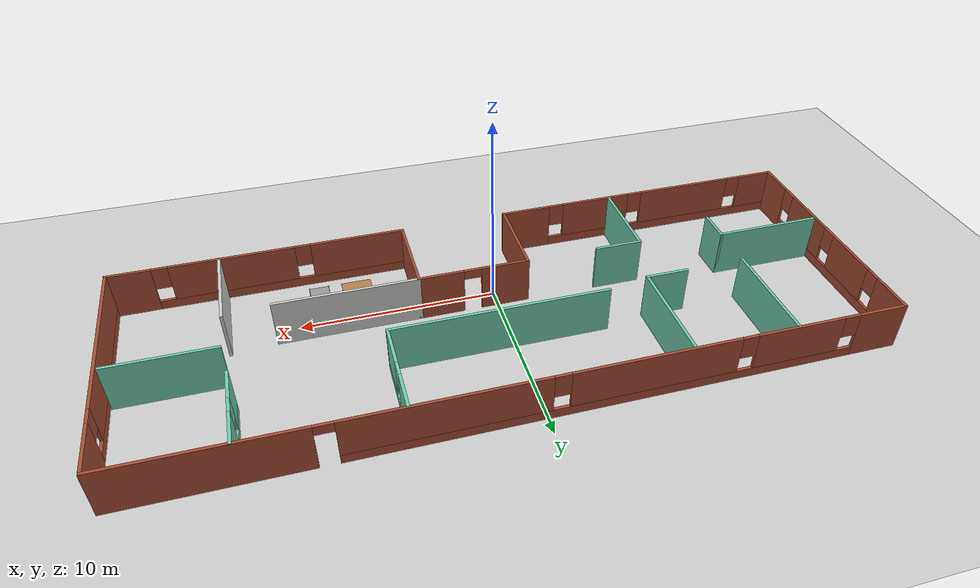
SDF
<sdf version="1.6">
 <world name="default">
  <model name="ground_plane">
   <static>1</static>
   <link name="link">
    <collision name="collision">
     <geometry><plane><normal>0 0 1</normal><size>100 100</size></plane></geometry>
     <surface><friction><ode><mu>100</mu><mu2>50</mu2></ode></friction></surface>
    </collision>
    <visual name="visual">
     <cast_shadows>0</cast_shadows>
     <geometry><plane><normal>0 0 1</normal><size>100 100</size></plane></geometry>
     <material>
      <script><uri>file://media/materials/scripts/gazebo.material</uri><name>Gazebo/Grey</name></script>
     </material>
    </visual>
   </link>
  </model>
  <model name="office">
   <pose>0.5777 2.7439 0 0 -0 0</pose>
   <link name="Wall_27">
    <pose>18.275 0.006607 0 0 0 -1.5708</pose>
    <visual name="Wall_27_Visual_0">
     <pose>-4.99868 0 1.25 0 -0 0</pose>
     <geometry><box><size>2.75264 0.15 2.5</size></box></geometry>
     <material>
      <script><uri>file://media/materials/scripts/gazebo.material</uri><name>Gazebo/Bricks</name></script>
      <ambient>1 1 1 1</ambient>
     </material>
     <meta><layer>0</layer></meta>
    </visual>
    <collision name="Wall_27_Collision_0">
     <geometry><box><size>2.75264 0.15 2.5</size></box></geometry>
     <pose>-4.99868 0 1.25 0 -0 0</pose>
    </collision>
    <visual name="Wall_27_Visual_1">
     <pose>1.37632 0 0.25 0 -0 0</pose>
     <geometry><box><size>9.99736 0.15 0.5</size></box></geometry>
     <material>
      <script><uri>file://media/materials/scripts/gazebo.material</uri><name>Gazebo/Bricks</name></script>
      <ambient>1 1 1 1</ambient>
     </material>
     <meta><layer>0</layer></meta>
    </visual>
    <collision name="Wall_27_Collision_1">
     <geometry><box><size>9.99736 0.15 0.5</size></box></geometry>
     <pose>1.37632 0 0.25 0 -0 0</pose>
    </collision>
    <visual name="Wall_27_Visual_2">
     <pose>1.77632 0 1.5 0 -0 0</pose>
     <geometry><box><size>9.19736 0.15 2</size></box></geometry>
     <material>
      <script><uri>file://media/materials/scripts/gazebo.material</uri><name>Gazebo/Bricks</name></script>
      <ambient>1 1 1 1</ambient>
     </material>
     <meta><layer>0</layer></meta>
    </visual>
    <collision name="Wall_27_Collision_2">
     <geometry><box><size>9.19736 0.15 2</size></box></geometry>
     <pose>1.77632 0 1.5 0 -0 0</pose>
    </collision>
    <visual name="Wall_27_Visual_3">
     <pose>-3.22236 0 1.9 0 -0 0</pose>
     <geometry><box><size>0.8 0.15 1.2</size></box></geometry>
     <material>
      <script><uri>file://media/materials/scripts/gazebo.material</uri><name>Gazebo/Bricks</name></script>
      <ambient>1 1 1 1</ambient>
     </material>
     <meta><layer>0</layer></meta>
    </visual>
    <collision name="Wall_27_Collision_3">
     <geometry><box><size>0.8 0.15 1.2</size></box></geometry>
     <pose>-3.22236 0 1.9 0 -0 0</pose>
    </collision>
   </link>
   <link name="Wall_28">
    <pose>10.85 -6.29339 0 0 -0 3.14159</pose>
    <visual name="Wall_28_Visual_0">
     <pose>-6.39219 0 1.25 0 -0 0</pose>
     <geometry><box><size>2.21562 0.15 2.5</size></box></geometry>
     <material>
      <script><uri>file://media/materials/scripts/gazebo.material</uri><name>Gazebo/Bricks</name></script>
      <ambient>1 1 1 1</ambient>
     </material>
     <meta><layer>0</layer></meta>
    </visual>
    <collision name="Wall_28_Collision_0">
     <geometry><box><size>2.21562 0.15 2.5</size></box></geometry>
     <pose>-6.39219 0 1.25 0 -0 0</pose>
    </collision>
    <visual name="Wall_28_Visual_1">
     <pose>1.10781 0 0.25 0 -0 0</pose>
     <geometry><box><size>12.7844 0.15 0.5</size></box></geometry>
     <material>
      <script><uri>file://media/materials/scripts/gazebo.material</uri><name>Gazebo/Bricks</name></script>
      <ambient>1 1 1 1</ambient>
     </material>
     <meta><layer>0</layer></meta>
    </visual>
    <collision name="Wall_28_Collision_1">
     <geometry><box><size>12.7844 0.15 0.5</size></box></geometry>
     <pose>1.10781 0 0.25 0 -0 0</pose>
    </collision>
    <visual name="Wall_28_Visual_2">
     <pose>-1.34653 0 1.5 0 -0 0</pose>
     <geometry><box><size>6.27571 0.15 2</size></box></geometry>
     <material>
      <script><uri>file://media/materials/scripts/gazebo.material</uri><name>Gazebo/Bricks</name></script>
      <ambient>1 1 1 1</ambient>
     </material>
     <meta><layer>0</layer></meta>
    </visual>
    <collision name="Wall_28_Collision_2">
     <geometry><box><size>6.27571 0.15 2</size></box></geometry>
     <pose>-1.34653 0 1.5 0 -0 0</pose>
    </collision>
    <visual name="Wall_28_Visual_3">
     <pose>5.04566 0 1.5 0 -0 0</pose>
     <geometry><box><size>4.90868 0.15 2</size></box></geometry>
     <material>
      <script><uri>file://media/materials/scripts/gazebo.material</uri><name>Gazebo/Bricks</name></script>
      <ambient>1 1 1 1</ambient>
     </material>
     <meta><layer>0</layer></meta>
    </visual>
    <collision name="Wall_28_Collision_3">
     <geometry><box><size>4.90868 0.15 2</size></box></geometry>
     <pose>5.04566 0 1.5 0 -0 0</pose>
    </collision>
    <visual name="Wall_28_Visual_4">
     <pose>-4.88438 0 1.9 0 -0 0</pose>
     <geometry><box><size>0.8 0.15 1.2</size></box></geometry>
     <material>
      <script><uri>file://media/materials/scripts/gazebo.material</uri><name>Gazebo/Bricks</name></script>
      <ambient>1 1 1 1</ambient>
     </material>
     <meta><layer>0</layer></meta>
    </visual>
    <collision name="Wall_28_Collision_4">
     <geometry><box><size>0.8 0.15 1.2</size></box></geometry>
     <pose>-4.88438 0 1.9 0 -0 0</pose>
    </collision>
    <visual name="Wall_28_Visual_5">
     <pose>2.19132 0 1.9 0 -0 0</pose>
     <geometry><box><size>0.8 0.15 1.2</size></box></geometry>
     <material>
      <script><uri>file://media/materials/scripts/gazebo.material</uri><name>Gazebo/Bricks</name></script>
      <ambient>1 1 1 1</ambient>
     </material>
     <meta><layer>0</layer></meta>
    </visual>
    <collision name="Wall_28_Collision_5">
     <geometry><box><size>0.8 0.15 1.2</size></box></geometry>
     <pose>2.19132 0 1.9 0 -0 0</pose>
    </collision>
   </link>
   <link name="Wall_29">
    <collision name="Wall_29_Collision">
     <geometry><box><size>4.5 0.15 2.5</size></box></geometry>
     <pose>0 0 1.25 0 -0 0</pose>
    </collision>
    <visual name="Wall_29_Visual">
     <pose>0 0 1.25 0 -0 0</pose>
     <geometry><box><size>4.5 0.15 2.5</size></box></geometry>
     <material>
      <script><uri>file://media/materials/scripts/gazebo.material</uri><name>Gazebo/Bricks</name></script>
      <ambient>1 1 1 1</ambient>
     </material>
     <meta><layer>0</layer></meta>
    </visual>
    <pose>3.425 -4.11839 0 0 -0 1.5708</pose>
   </link>
   <link name="Wall_30">
    <pose>0.625 -1.94339 0 0 -0 3.14159</pose>
    <visual name="Wall_30_Visual_0">
     <pose>-1.6967 0 1.25 0 -0 0</pose>
     <geometry><box><size>2.3566 0.15 2.5</size></box></geometry>
     <material>
      <script><uri>file://media/materials/scripts/gazebo.material</uri><name>Gazebo/Bricks</name></script>
      <ambient>1 1 1 1</ambient>
     </material>
     <meta><layer>0</layer></meta>
    </visual>
    <collision name="Wall_30_Collision_0">
     <geometry><box><size>2.3566 0.15 2.5</size></box></geometry>
     <pose>-1.6967 0 1.25 0 -0 0</pose>
    </collision>
    <visual name="Wall_30_Visual_1">
     <pose>1.6283 0 1.25 0 -0 0</pose>
     <geometry><box><size>2.4934 0.15 2.5</size></box></geometry>
     <material>
      <script><uri>file://media/materials/scripts/gazebo.material</uri><name>Gazebo/Bricks</name></script>
      <ambient>1 1 1 1</ambient>
     </material>
     <meta><layer>0</layer></meta>
    </visual>
    <collision name="Wall_30_Collision_1">
     <geometry><box><size>2.4934 0.15 2.5</size></box></geometry>
     <pose>1.6283 0 1.25 0 -0 0</pose>
    </collision>
    <visual name="Wall_30_Visual_2">
     <pose>-0.068397 0 2.25 0 -0 0</pose>
     <geometry><box><size>0.9 0.15 0.5</size></box></geometry>
     <material>
      <script><uri>file://media/materials/scripts/gazebo.material</uri><name>Gazebo/Bricks</name></script>
      <ambient>1 1 1 1</ambient>
     </material>
     <meta><layer>0</layer></meta>
    </visual>
    <collision name="Wall_30_Collision_2">
     <geometry><box><size>0.9 0.15 0.5</size></box></geometry>
     <pose>-0.068397 0 2.25 0 -0 0</pose>
    </collision>
   </link>
   <link name="Wall_31">
    <collision name="Wall_31_Collision">
     <geometry><box><size>4.5 0.15 2.5</size></box></geometry>
     <pose>0 0 1.25 0 -0 0</pose>
    </collision>
    <visual name="Wall_31_Visual">
     <pose>0 0 1.25 0 -0 0</pose>
     <geometry><box><size>4.5 0.15 2.5</size></box></geometry>
     <material>
      <script><uri>file://media/materials/scripts/gazebo.material</uri><name>Gazebo/Bricks</name></script>
      <ambient>1 1 1 1</ambient>
     </material>
     <meta><layer>0</layer></meta>
    </visual>
    <pose>-2.175 -4.11839 0 0 0 -1.5708</pose>
   </link>
   <link name="Wall_32">
    <pose>-10.225 -6.29339 0 0 -0 3.14159</pose>
    <visual name="Wall_32_Visual_0">
     <pose>-6.78571 0 1.25 0 -0 0</pose>
     <geometry><box><size>2.67859 0.15 2.5</size></box></geometry>
     <material>
      <script><uri>file://media/materials/scripts/gazebo.material</uri><name>Gazebo/Bricks</name></script>
      <ambient>1 1 1 1</ambient>
     </material>
     <meta><layer>0</layer></meta>
    </visual>
    <collision name="Wall_32_Collision_0">
     <geometry><box><size>2.67859 0.15 2.5</size></box></geometry>
     <pose>-6.78571 0 1.25 0 -0 0</pose>
    </collision>
    <visual name="Wall_32_Visual_1">
     <pose>1.33929 0 0.25 0 -0 0</pose>
     <geometry><box><size>13.5714 0.15 0.5</size></box></geometry>
     <material>
      <script><uri>file://media/materials/scripts/gazebo.material</uri><name>Gazebo/Bricks</name></script>
      <ambient>1 1 1 1</ambient>
     </material>
     <meta><layer>0</layer></meta>
    </visual>
    <collision name="Wall_32_Collision_1">
     <geometry><box><size>13.5714 0.15 0.5</size></box></geometry>
     <pose>1.33929 0 0.25 0 -0 0</pose>
    </collision>
    <visual name="Wall_32_Visual_2">
     <pose>-2.72912 0 1.5 0 -0 0</pose>
     <geometry><box><size>3.83459 0.15 2</size></box></geometry>
     <material>
      <script><uri>file://media/materials/scripts/gazebo.material</uri><name>Gazebo/Bricks</name></script>
      <ambient>1 1 1 1</ambient>
     </material>
     <meta><layer>0</layer></meta>
    </visual>
    <collision name="Wall_32_Collision_2">
     <geometry><box><size>3.83459 0.15 2</size></box></geometry>
     <pose>-2.72912 0 1.5 0 -0 0</pose>
    </collision>
    <visual name="Wall_32_Visual_3">
     <pose>2.64842 0 1.5 0 -0 0</pose>
     <geometry><box><size>5.32049 0.15 2</size></box></geometry>
     <material>
      <script><uri>file://media/materials/scripts/gazebo.material</uri><name>Gazebo/Bricks</name></script>
      <ambient>1 1 1 1</ambient>
     </material>
     <meta><layer>0</layer></meta>
    </visual>
    <collision name="Wall_32_Collision_3">
     <geometry><box><size>5.32049 0.15 2</size></box></geometry>
     <pose>2.64842 0 1.5 0 -0 0</pose>
    </collision>
    <visual name="Wall_32_Visual_4">
     <pose>7.11683 0 1.5 0 -0 0</pose>
     <geometry><box><size>2.01634 0.15 2</size></box></geometry>
     <material>
      <script><uri>file://media/materials/scripts/gazebo.material</uri><name>Gazebo/Bricks</name></script>
      <ambient>1 1 1 1</ambient>
     </material>
     <meta><layer>0</layer></meta>
    </visual>
    <collision name="Wall_32_Collision_4">
     <geometry><box><size>2.01634 0.15 2</size></box></geometry>
     <pose>7.11683 0 1.5 0 -0 0</pose>
    </collision>
    <visual name="Wall_32_Visual_5">
     <pose>-5.04641 0 1.9 0 -0 0</pose>
     <geometry><box><size>0.8 0.15 1.2</size></box></geometry>
     <material>
      <script><uri>file://media/materials/scripts/gazebo.material</uri><name>Gazebo/Bricks</name></script>
      <ambient>1 1 1 1</ambient>
     </material>
     <meta><layer>0</layer></meta>
    </visual>
    <collision name="Wall_32_Collision_5">
     <geometry><box><size>0.8 0.15 1.2</size></box></geometry>
     <pose>-5.04641 0 1.9 0 -0 0</pose>
    </collision>
    <visual name="Wall_32_Visual_6">
     <pose>-0.411825 0 1.9 0 -0 0</pose>
     <geometry><box><size>0.8 0.15 1.2</size></box></geometry>
     <material>
      <script><uri>file://media/materials/scripts/gazebo.material</uri><name>Gazebo/Bricks</name></script>
      <ambient>1 1 1 1</ambient>
     </material>
     <meta><layer>0</layer></meta>
    </visual>
    <collision name="Wall_32_Collision_6">
     <geometry><box><size>0.8 0.15 1.2</size></box></geometry>
     <pose>-0.411825 0 1.9 0 -0 0</pose>
    </collision>
    <visual name="Wall_32_Visual_7">
     <pose>5.70866 0 1.9 0 -0 0</pose>
     <geometry><box><size>0.8 0.15 1.2</size></box></geometry>
     <material>
      <script><uri>file://media/materials/scripts/gazebo.material</uri><name>Gazebo/Bricks</name></script>
      <ambient>1 1 1 1</ambient>
     </material>
     <meta><layer>0</layer></meta>
    </visual>
    <collision name="Wall_32_Collision_7">
     <geometry><box><size>0.8 0.15 1.2</size></box></geometry>
     <pose>5.70866 0 1.9 0 -0 0</pose>
    </collision>
   </link>
   <link name="Wall_33">
    <pose>-18.275 0.006607 0 0 -0 1.5708</pose>
    <visual name="Wall_33_Visual_0">
     <pose>-5.34955 0 1.25 0 -0 0</pose>
     <geometry><box><size>2.0509 0.15 2.5</size></box></geometry>
     <material>
      <script><uri>file://media/materials/scripts/gazebo.material</uri><name>Gazebo/Bricks</name></script>
      <ambient>1 1 1 1</ambient>
     </material>
     <meta><layer>0</layer></meta>
    </visual>
    <collision name="Wall_33_Collision_0">
     <geometry><box><size>2.0509 0.15 2.5</size></box></geometry>
     <pose>-5.34955 0 1.25 0 -0 0</pose>
    </collision>
    <visual name="Wall_33_Visual_1">
     <pose>1.02545 0 0.25 0 -0 0</pose>
     <geometry><box><size>10.6991 0.15 0.5</size></box></geometry>
     <material>
      <script><uri>file://media/materials/scripts/gazebo.material</uri><name>Gazebo/Bricks</name></script>
      <ambient>1 1 1 1</ambient>
     </material>
     <meta><layer>0</layer></meta>
    </visual>
    <collision name="Wall_33_Collision_1">
     <geometry><box><size>10.6991 0.15 0.5</size></box></geometry>
     <pose>1.02545 0 0.25 0 -0 0</pose>
    </collision>
    <visual name="Wall_33_Visual_2">
     <pose>-1.9429 0 1.5 0 -0 0</pose>
     <geometry><box><size>3.1624 0.15 2</size></box></geometry>
     <material>
      <script><uri>file://media/materials/scripts/gazebo.material</uri><name>Gazebo/Bricks</name></script>
      <ambient>1 1 1 1</ambient>
     </material>
     <meta><layer>0</layer></meta>
    </visual>
    <collision name="Wall_33_Collision_2">
     <geometry><box><size>3.1624 0.15 2</size></box></geometry>
     <pose>-1.9429 0 1.5 0 -0 0</pose>
    </collision>
    <visual name="Wall_33_Visual_3">
     <pose>1.91336 0 1.5 0 -0 0</pose>
     <geometry><box><size>2.95012 0.15 2</size></box></geometry>
     <material>
      <script><uri>file://media/materials/scripts/gazebo.material</uri><name>Gazebo/Bricks</name></script>
      <ambient>1 1 1 1</ambient>
     </material>
     <meta><layer>0</layer></meta>
    </visual>
    <collision name="Wall_33_Collision_3">
     <geometry><box><size>2.95012 0.15 2</size></box></geometry>
     <pose>1.91336 0 1.5 0 -0 0</pose>
    </collision>
    <visual name="Wall_33_Visual_4">
     <pose>5.28171 0 1.5 0 -0 0</pose>
     <geometry><box><size>2.18658 0.15 2</size></box></geometry>
     <material>
      <script><uri>file://media/materials/scripts/gazebo.material</uri><name>Gazebo/Bricks</name></script>
      <ambient>1 1 1 1</ambient>
     </material>
     <meta><layer>0</layer></meta>
    </visual>
    <collision name="Wall_33_Collision_4">
     <geometry><box><size>2.18658 0.15 2</size></box></geometry>
     <pose>5.28171 0 1.5 0 -0 0</pose>
    </collision>
    <visual name="Wall_33_Visual_5">
     <pose>-3.9241 0 1.9 0 -0 0</pose>
     <geometry><box><size>0.8 0.15 1.2</size></box></geometry>
     <material>
      <script><uri>file://media/materials/scripts/gazebo.material</uri><name>Gazebo/Bricks</name></script>
      <ambient>1 1 1 1</ambient>
     </material>
     <meta><layer>0</layer></meta>
    </visual>
    <collision name="Wall_33_Collision_5">
     <geometry><box><size>0.8 0.15 1.2</size></box></geometry>
     <pose>-3.9241 0 1.9 0 -0 0</pose>
    </collision>
    <visual name="Wall_33_Visual_6">
     <pose>0.038294 0 1.9 0 -0 0</pose>
     <geometry><box><size>0.8 0.15 1.2</size></box></geometry>
     <material>
      <script><uri>file://media/materials/scripts/gazebo.material</uri><name>Gazebo/Bricks</name></script>
      <ambient>1 1 1 1</ambient>
     </material>
     <meta><layer>0</layer></meta>
    </visual>
    <collision name="Wall_33_Collision_6">
     <geometry><box><size>0.8 0.15 1.2</size></box></geometry>
     <pose>0.038294 0 1.9 0 -0 0</pose>
    </collision>
    <visual name="Wall_33_Visual_7">
     <pose>3.78842 0 1.9 0 -0 0</pose>
     <geometry><box><size>0.8 0.15 1.2</size></box></geometry>
     <material>
      <script><uri>file://media/materials/scripts/gazebo.material</uri><name>Gazebo/Bricks</name></script>
      <ambient>1 1 1 1</ambient>
     </material>
     <meta><layer>0</layer></meta>
    </visual>
    <collision name="Wall_33_Collision_7">
     <geometry><box><size>0.8 0.15 1.2</size></box></geometry>
     <pose>3.78842 0 1.9 0 -0 0</pose>
    </collision>
   </link>
   <link name="Wall_35">
    <pose>0 6.30661 0 0 -0 0</pose>
    <visual name="Wall_35_Visual_0">
     <pose>-17.0942 0 1.25 0 -0 0</pose>
     <geometry><box><size>2.51164 0.15 2.5</size></box></geometry>
     <material>
      <script><uri>file://media/materials/scripts/gazebo.material</uri><name>Gazebo/Bricks</name></script>
      <ambient>1 1 1 1</ambient>
     </material>
     <meta><layer>0</layer></meta>
    </visual>
    <collision name="Wall_35_Collision_0">
     <geometry><box><size>2.51164 0.15 2.5</size></box></geometry>
     <pose>-17.0942 0 1.25 0 -0 0</pose>
    </collision>
    <visual name="Wall_35_Visual_1">
     <pose>13.9356 0 1.25 0 -0 0</pose>
     <geometry><box><size>8.82887 0.15 2.5</size></box></geometry>
     <material>
      <script><uri>file://media/materials/scripts/gazebo.material</uri><name>Gazebo/Bricks</name></script>
      <ambient>1 1 1 1</ambient>
     </material>
     <meta><layer>0</layer></meta>
    </visual>
    <collision name="Wall_35_Collision_1">
     <geometry><box><size>8.82887 0.15 2.5</size></box></geometry>
     <pose>13.9356 0 1.25 0 -0 0</pose>
    </collision>
    <visual name="Wall_35_Visual_2">
     <pose>-3.60861 0 0.25 0 -0 0</pose>
     <geometry><box><size>24.4595 0.15 0.5</size></box></geometry>
     <material>
      <script><uri>file://media/materials/scripts/gazebo.material</uri><name>Gazebo/Bricks</name></script>
      <ambient>1 1 1 1</ambient>
     </material>
     <meta><layer>0</layer></meta>
    </visual>
    <collision name="Wall_35_Collision_2">
     <geometry><box><size>24.4595 0.15 0.5</size></box></geometry>
     <pose>-3.60861 0 0.25 0 -0 0</pose>
    </collision>
    <visual name="Wall_35_Visual_3">
     <pose>-12.8027 0 1.5 0 -0 0</pose>
     <geometry><box><size>4.4714 0.15 2</size></box></geometry>
     <material>
      <script><uri>file://media/materials/scripts/gazebo.material</uri><name>Gazebo/Bricks</name></script>
      <ambient>1 1 1 1</ambient>
     </material>
     <meta><layer>0</layer></meta>
    </visual>
    <collision name="Wall_35_Collision_3">
     <geometry><box><size>4.4714 0.15 2</size></box></geometry>
     <pose>-12.8027 0 1.5 0 -0 0</pose>
    </collision>
    <visual name="Wall_35_Visual_4">
     <pose>-5.68356 0 1.5 0 -0 0</pose>
     <geometry><box><size>8.16679 0.15 2</size></box></geometry>
     <material>
      <script><uri>file://media/materials/scripts/gazebo.material</uri><name>Gazebo/Bricks</name></script>
      <ambient>1 1 1 1</ambient>
     </material>
     <meta><layer>0</layer></meta>
    </visual>
    <collision name="Wall_35_Collision_4">
     <geometry><box><size>8.16679 0.15 2</size></box></geometry>
     <pose>-5.68356 0 1.5 0 -0 0</pose>
    </collision>
    <visual name="Wall_35_Visual_5">
     <pose>3.91048 0 1.5 0 -0 0</pose>
     <geometry><box><size>9.4213 0.15 2</size></box></geometry>
     <material>
      <script><uri>file://media/materials/scripts/gazebo.material</uri><name>Gazebo/Bricks</name></script>
      <ambient>1 1 1 1</ambient>
     </material>
     <meta><layer>0</layer></meta>
    </visual>
    <collision name="Wall_35_Collision_5">
     <geometry><box><size>9.4213 0.15 2</size></box></geometry>
     <pose>3.91048 0 1.5 0 -0 0</pose>
    </collision>
    <visual name="Wall_35_Visual_6">
     <pose>-15.4384 0 1.9 0 -0 0</pose>
     <geometry><box><size>0.8 0.15 1.2</size></box></geometry>
     <material>
      <script><uri>file://media/materials/scripts/gazebo.material</uri><name>Gazebo/Bricks</name></script>
      <ambient>1 1 1 1</ambient>
     </material>
     <meta><layer>0</layer></meta>
    </visual>
    <collision name="Wall_35_Collision_6">
     <geometry><box><size>0.8 0.15 1.2</size></box></geometry>
     <pose>-15.4384 0 1.9 0 -0 0</pose>
    </collision>
    <visual name="Wall_35_Visual_7">
     <pose>-10.167 0 1.9 0 -0 0</pose>
     <geometry><box><size>0.8 0.15 1.2</size></box></geometry>
     <material>
      <script><uri>file://media/materials/scripts/gazebo.material</uri><name>Gazebo/Bricks</name></script>
      <ambient>1 1 1 1</ambient>
     </material>
     <meta><layer>0</layer></meta>
    </visual>
    <collision name="Wall_35_Collision_7">
     <geometry><box><size>0.8 0.15 1.2</size></box></geometry>
     <pose>-10.167 0 1.9 0 -0 0</pose>
    </collision>
    <visual name="Wall_35_Visual_8">
     <pose>-1.20017 0 1.9 0 -0 0</pose>
     <geometry><box><size>0.8 0.15 1.2</size></box></geometry>
     <material>
      <script><uri>file://media/materials/scripts/gazebo.material</uri><name>Gazebo/Bricks</name></script>
      <ambient>1 1 1 1</ambient>
     </material>
     <meta><layer>0</layer></meta>
    </visual>
    <collision name="Wall_35_Collision_8">
     <geometry><box><size>0.8 0.15 1.2</size></box></geometry>
     <pose>-1.20017 0 1.9 0 -0 0</pose>
    </collision>
    <visual name="Wall_35_Visual_9">
     <pose>9.07113 0 2.25 0 -0 0</pose>
     <geometry><box><size>0.9 0.15 0.5</size></box></geometry>
     <material>
      <script><uri>file://media/materials/scripts/gazebo.material</uri><name>Gazebo/Bricks</name></script>
      <ambient>1 1 1 1</ambient>
     </material>
     <meta><layer>0</layer></meta>
    </visual>
    <collision name="Wall_35_Collision_9">
     <geometry><box><size>0.9 0.15 0.5</size></box></geometry>
     <pose>9.07113 0 2.25 0 -0 0</pose>
    </collision>
   </link>
   <link name="Wall_38">
    <collision name="Wall_38_Collision">
     <geometry><box><size>5.75 0.15 2.5</size></box></geometry>
     <pose>0 0 1.25 0 -0 0</pose>
    </collision>
    <visual name="Wall_38_Visual">
     <pose>0 0 1.25 0 -0 0</pose>
     <geometry><box><size>5.75 0.15 2.5</size></box></geometry>
     <material>
      <script><uri>file://media/materials/scripts/gazebo.material</uri><name>Gazebo/Grey</name></script>
      <ambient>0.435294 0.796078 0.67451 1</ambient>
     </material>
     <meta><layer>0</layer></meta>
    </visual>
    <pose>-15.4596 -1.35361 0 0 -0 0</pose>
   </link>
   <link name="Wall_39">
    <collision name="Wall_39_Collision">
     <geometry><box><size>1.75 0.15 2.5</size></box></geometry>
     <pose>0 0 1.25 0 -0 0</pose>
    </collision>
    <visual name="Wall_39_Visual">
     <pose>0 0 1.25 0 -0 0</pose>
     <geometry><box><size>1.75 0.15 2.5</size></box></geometry>
     <material>
      <script><uri>file://media/materials/scripts/gazebo.material</uri><name>Gazebo/Grey</name></script>
      <ambient>0.435294 0.796078 0.67451 1</ambient>
     </material>
     <meta><layer>0</layer></meta>
    </visual>
    <pose>-12.6596 -2.15361 0 0 0 -1.5708</pose>
   </link>
   <link name="Wall_41">
    <collision name="Wall_41_Collision">
     <geometry><box><size>5.5 0.15 2.5</size></box></geometry>
     <pose>0 0 1.25 0 -0 0</pose>
    </collision>
    <visual name="Wall_41_Visual">
     <pose>0 0 1.25 0 -0 0</pose>
     <geometry><box><size>5.5 0.15 2.5</size></box></geometry>
     <material>
      <script><uri>file://media/materials/scripts/gazebo.material</uri><name>Gazebo/Grey</name></script>
      <ambient>0.435294 0.796078 0.67451 1</ambient>
     </material>
     <meta><layer>0</layer></meta>
    </visual>
    <pose>-12.6605 3.57008 0 0 0 -1.5708</pose>
   </link>
   <link name="Wall_43">
    <collision name="Wall_43_Collision">
     <geometry><box><size>2.25 0.15 2.5</size></box></geometry>
     <pose>0 0 1.25 0 -0 0</pose>
    </collision>
    <visual name="Wall_43_Visual">
     <pose>0 0 1.25 0 -0 0</pose>
     <geometry><box><size>2.25 0.15 2.5</size></box></geometry>
     <material>
      <script><uri>file://media/materials/scripts/gazebo.material</uri><name>Gazebo/Grey</name></script>
      <ambient>0.435294 0.796078 0.67451 1</ambient>
     </material>
     <meta><layer>0</layer></meta>
    </visual>
    <pose>-8.50339 0.953682 0 0 -0 0</pose>
   </link>
   <link name="Wall_44">
    <collision name="Wall_44_Collision">
     <geometry><box><size>5.5 0.15 2.5</size></box></geometry>
     <pose>0 0 1.25 0 -0 0</pose>
    </collision>
    <visual name="Wall_44_Visual">
     <pose>0 0 1.25 0 -0 0</pose>
     <geometry><box><size>5.5 0.15 2.5</size></box></geometry>
     <material>
      <script><uri>file://media/materials/scripts/gazebo.material</uri><name>Gazebo/Grey</name></script>
      <ambient>0.435294 0.796078 0.67451 1</ambient>
     </material>
     <meta><layer>0</layer></meta>
    </visual>
    <pose>-7.45339 3.62868 0 0 -0 1.5708</pose>
   </link>
   <link name="Wall_46">
    <collision name="Wall_46_Collision">
     <geometry><box><size>4.75 0.15 2.5</size></box></geometry>
     <pose>0 0 1.25 0 -0 0</pose>
    </collision>
    <visual name="Wall_46_Visual">
     <pose>0 0 1.25 0 -0 0</pose>
     <geometry><box><size>4.75 0.15 2.5</size></box></geometry>
     <material>
      <script><uri>file://media/materials/scripts/gazebo.material</uri><name>Gazebo/CeilingTiled</name></script>
      <ambient>0.435294 0.796078 0.67451 1</ambient>
     </material>
     <meta><layer>0</layer></meta>
    </visual>
    <pose>12.8428 -4.00661 0 0 -0 1.5708</pose>
   </link>
   <link name="Wall_48">
    <collision name="Wall_48_Collision">
     <geometry><box><size>5.25 0.15 2.5</size></box></geometry>
     <pose>0 0 1.25 0 -0 0</pose>
    </collision>
    <visual name="Wall_48_Visual">
     <pose>0 0 1.25 0 -0 0</pose>
     <geometry><box><size>5.25 0.15 2.5</size></box></geometry>
     <material>
      <script><uri>file://media/materials/scripts/gazebo.material</uri><name>Gazebo/Grey</name></script>
      <ambient>0.435294 0.796078 0.67451 1</ambient>
     </material>
     <meta><layer>0</layer></meta>
    </visual>
    <pose>15.5226 0.430695 0 0 -0 3.14159</pose>
   </link>
   <link name="Wall_50">
    <pose>12.7197 4.22584 0 0 0 -1.5708</pose>
    <visual name="Wall_50_Visual_0">
     <pose>-1.22398 0 1.25 0 -0 0</pose>
     <geometry><box><size>1.80203 0.15 2.5</size></box></geometry>
     <material>
      <script><uri>file://media/materials/scripts/gazebo.material</uri><name>Gazebo/Grey</name></script>
      <ambient>0.435294 0.796078 0.67451 1</ambient>
     </material>
     <meta><layer>0</layer></meta>
    </visual>
    <collision name="Wall_50_Collision_0">
     <geometry><box><size>1.80203 0.15 2.5</size></box></geometry>
     <pose>-1.22398 0 1.25 0 -0 0</pose>
    </collision>
    <visual name="Wall_50_Visual_1">
     <pose>0.901016 0 0.25 0 -0 0</pose>
     <geometry><box><size>2.44797 0.15 0.5</size></box></geometry>
     <material>
      <script><uri>file://media/materials/scripts/gazebo.material</uri><name>Gazebo/Grey</name></script>
      <ambient>0.435294 0.796078 0.67451 1</ambient>
     </material>
     <meta><layer>0</layer></meta>
    </visual>
    <collision name="Wall_50_Collision_1">
     <geometry><box><size>2.44797 0.15 0.5</size></box></geometry>
     <pose>0.901016 0 0.25 0 -0 0</pose>
    </collision>
    <visual name="Wall_50_Visual_2">
     <pose>1.30102 0 1.5 0 -0 0</pose>
     <geometry><box><size>1.64797 0.15 2</size></box></geometry>
     <material>
      <script><uri>file://media/materials/scripts/gazebo.material</uri><name>Gazebo/Grey</name></script>
      <ambient>0.435294 0.796078 0.67451 1</ambient>
     </material>
     <meta><layer>0</layer></meta>
    </visual>
    <collision name="Wall_50_Collision_2">
     <geometry><box><size>1.64797 0.15 2</size></box></geometry>
     <pose>1.30102 0 1.5 0 -0 0</pose>
    </collision>
    <visual name="Wall_50_Visual_3">
     <pose>0.077033 0 1.9 0 -0 0</pose>
     <geometry><box><size>0.8 0.15 1.2</size></box></geometry>
     <material>
      <script><uri>file://media/materials/scripts/gazebo.material</uri><name>Gazebo/Grey</name></script>
      <ambient>0.435294 0.796078 0.67451 1</ambient>
     </material>
     <meta><layer>0</layer></meta>
    </visual>
    <collision name="Wall_50_Collision_3">
     <geometry><box><size>0.8 0.15 1.2</size></box></geometry>
     <pose>0.077033 0 1.9 0 -0 0</pose>
    </collision>
   </link>
   <link name="Wall_53">
    <collision name="Wall_53_Collision">
     <geometry><box><size>7.25 0.15 2.5</size></box></geometry>
     <pose>0 0 1.25 0 -0 0</pose>
    </collision>
    <visual name="Wall_53_Visual">
     <pose>0 0 1.25 0 -0 0</pose>
     <geometry><box><size>7.25 0.15 2.5</size></box></geometry>
     <material>
      <script><uri>file://media/materials/scripts/gazebo.material</uri><name>Gazebo/CeilingTiled</name></script>
      <ambient>0.435294 0.796078 0.67451 1</ambient>
     </material>
     <meta><layer>0</layer></meta>
    </visual>
    <pose>6.975 -1.94339 0 0 -0 0</pose>
   </link>
   <link name="Wall_55">
    <collision name="Wall_55_Collision">
     <geometry><box><size>2.5 0.15 2.5</size></box></geometry>
     <pose>0 0 1.25 0 -0 0</pose>
    </collision>
    <visual name="Wall_55_Visual">
     <pose>0 0 1.25 0 -0 0</pose>
     <geometry><box><size>2.5 0.15 2.5</size></box></geometry>
     <material>
      <script><uri>file://media/materials/scripts/gazebo.material</uri><name>Gazebo/Grey</name></script>
      <ambient>0.435294 0.796078 0.67451 1</ambient>
     </material>
     <meta><layer>0</layer></meta>
    </visual>
    <pose>-7.09824 -1.93813 0 0 -0 3.14159</pose>
   </link>
   <link name="Wall_56">
    <collision name="Wall_56_Collision">
     <geometry><box><size>4.5 0.15 2.5</size></box></geometry>
     <pose>0 0 1.25 0 -0 0</pose>
    </collision>
    <visual name="Wall_56_Visual">
     <pose>0 0 1.25 0 -0 0</pose>
     <geometry><box><size>4.5 0.15 2.5</size></box></geometry>
     <material>
      <script><uri>file://media/materials/scripts/gazebo.material</uri><name>Gazebo/Grey</name></script>
      <ambient>0.435294 0.796078 0.67451 1</ambient>
     </material>
     <meta><layer>0</layer></meta>
    </visual>
    <pose>-8.27324 -4.11313 0 0 0 -1.5708</pose>
   </link>
   <link name="Wall_58">
    <pose>5.56938 3.78676 0 0 0 -1.5708</pose>
    <visual name="Wall_58_Visual_0">
     <pose>-1.52489 0 1.25 0 -0 0</pose>
     <geometry><box><size>1.95022 0.15 2.5</size></box></geometry>
     <material>
      <script><uri>file://media/materials/scripts/gazebo.material</uri><name>Gazebo/Grey</name></script>
      <ambient>0.435294 0.796078 0.67451 1</ambient>
     </material>
     <meta><layer>0</layer></meta>
    </visual>
    <collision name="Wall_58_Collision_0">
     <geometry><box><size>1.95022 0.15 2.5</size></box></geometry>
     <pose>-1.52489 0 1.25 0 -0 0</pose>
    </collision>
    <visual name="Wall_58_Visual_1">
     <pose>0.975108 0 0.25 0 -0 0</pose>
     <geometry><box><size>3.04978 0.15 0.5</size></box></geometry>
     <material>
      <script><uri>file://media/materials/scripts/gazebo.material</uri><name>Gazebo/Grey</name></script>
      <ambient>0.435294 0.796078 0.67451 1</ambient>
     </material>
     <meta><layer>0</layer></meta>
    </visual>
    <collision name="Wall_58_Collision_1">
     <geometry><box><size>3.04978 0.15 0.5</size></box></geometry>
     <pose>0.975108 0 0.25 0 -0 0</pose>
    </collision>
    <visual name="Wall_58_Visual_2">
     <pose>1.37511 0 1.5 0 -0 0</pose>
     <geometry><box><size>2.24978 0.15 2</size></box></geometry>
     <material>
      <script><uri>file://media/materials/scripts/gazebo.material</uri><name>Gazebo/Grey</name></script>
      <ambient>0.435294 0.796078 0.67451 1</ambient>
     </material>
     <meta><layer>0</layer></meta>
    </visual>
    <collision name="Wall_58_Collision_2">
     <geometry><box><size>2.24978 0.15 2</size></box></geometry>
     <pose>1.37511 0 1.5 0 -0 0</pose>
    </collision>
    <visual name="Wall_58_Visual_3">
     <pose>-0.149784 0 1.9 0 -0 0</pose>
     <geometry><box><size>0.8 0.15 1.2</size></box></geometry>
     <material>
      <script><uri>file://media/materials/scripts/gazebo.material</uri><name>Gazebo/Grey</name></script>
      <ambient>0.435294 0.796078 0.67451 1</ambient>
     </material>
     <meta><layer>0</layer></meta>
    </visual>
    <collision name="Wall_58_Collision_3">
     <geometry><box><size>0.8 0.15 1.2</size></box></geometry>
     <pose>-0.149784 0 1.9 0 -0 0</pose>
    </collision>
   </link>
   <link name="Wall_59">
    <collision name="Wall_59_Collision">
     <geometry><box><size>11 0.15 2.5</size></box></geometry>
     <pose>0 0 1.25 0 -0 0</pose>
    </collision>
    <visual name="Wall_59_Visual">
     <pose>0 0 1.25 0 -0 0</pose>
     <geometry><box><size>11 0.15 2.5</size></box></geometry>
     <material>
      <script><uri>file://media/materials/scripts/gazebo.material</uri><name>Gazebo/Grey</name></script>
      <ambient>0.435294 0.796078 0.67451 1</ambient>
     </material>
     <meta><layer>0</layer></meta>
    </visual>
    <pose>0.14438 1.36176 0 0 -0 3.14159</pose>
   </link>
   <static>1</static>
  </model>
  <model name="table_1">
   <static>1</static>
   <link name="link">
    <collision name="surface">
     <pose>0 0 1 0 -0 0</pose>
     <geometry><box><size>1.5 0.8 0.03</size></box></geometry>
     <surface><friction><ode><mu>0.6</mu><mu2>0.6</mu2></ode></friction></surface>
    </collision>
    <visual name="visual1">
     <pose>0 0 1 0 -0 0</pose>
     <geometry><box><size>1.5 0.8 0.03</size></box></geometry>
     <material>
      <script><uri>file://media/materials/scripts/gazebo.material</uri><name>Gazebo/Wood</name></script>
     </material>
    </visual>
    <collision name="front_left_leg">
     <pose>0.68 0.38 0.5 0 -0 0</pose>
     <geometry><cylinder><radius>0.02</radius><length>1</length></cylinder></geometry>
    </collision>
    <visual name="front_left_leg">
     <pose>0.68 0.38 0.5 0 -0 0</pose>
     <geometry><cylinder><radius>0.02</radius><length>1</length></cylinder></geometry>
     <material>
      <script><uri>file://media/materials/scripts/gazebo.material</uri><name>Gazebo/Grey</name></script>
     </material>
    </visual>
    <collision name="front_right_leg">
     <pose>0.68 -0.38 0.5 0 -0 0</pose>
     <geometry><cylinder><radius>0.02</radius><length>1</length></cylinder></geometry>
    </collision>
    <visual name="front_right_leg">
     <pose>0.68 -0.38 0.5 0 -0 0</pose>
     <geometry><cylinder><radius>0.02</radius><length>1</length></cylinder></geometry>
     <material>
      <script><uri>file://media/materials/scripts/gazebo.material</uri><name>Gazebo/Grey</name></script>
     </material>
    </visual>
    <collision name="back_right_leg">
     <pose>-0.68 -0.38 0.5 0 -0 0</pose>
     <geometry><cylinder><radius>0.02</radius><length>1</length></cylinder></geometry>
    </collision>
    <visual name="back_right_leg">
     <pose>-0.68 -0.38 0.5 0 -0 0</pose>
     <geometry><cylinder><radius>0.02</radius><length>1</length></cylinder></geometry>
     <material>
      <script><uri>file://media/materials/scripts/gazebo.material</uri><name>Gazebo/Grey</name></script>
     </material>
    </visual>
    <collision name="back_left_leg">
     <pose>-0.68 0.38 0.5 0 -0 0</pose>
     <geometry><cylinder><radius>0.02</radius><length>1</length></cylinder></geometry>
    </collision>
    <visual name="back_left_leg">
     <pose>-0.68 0.38 0.5 0 -0 0</pose>
     <geometry><cylinder><radius>0.02</radius><length>1</length></cylinder></geometry>
     <material>
      <script><uri>file://media/materials/scripts/gazebo.material</uri><name>Gazebo/Grey</name></script>
     </material>
    </visual>
   </link>
   <pose>6.88018 -1.34899 0 0 -0 0</pose>
  </model>
  <model name="ladder_60deg_0rails">
   <static>1</static>
   <link name="step0">
    <pose>0 0.15396 0.266667 0 -0 0</pose>
    <inertial>
     <mass>9.75482</mass>
     <inertia>
      <ixx>0.00957124</ixx>
      <iyy>0.65963</iyy>
      <izz>0.666842</izz>
      <ixy>0</ixy>
      <ixz>0</ixz>
      <iyz>0</iyz>
     </inertia>
    </inertial>
    <collision name="collision"><geometry><box><size>0.9 0.1016 0.0381</size></box></geometry></collision>
    <visual name="visual">
     <geometry><box><size>0.9 0.1016 0.0381</size></box></geometry>
     <material>
      <script><uri>file://media/materials/scripts/gazebo.material</uri><name>Gazebo/Grey</name></script>
     </material>
    </visual>
   </link>
   <link name="step1">
    <pose>0 0.30792 0.533333 0 -0 0</pose>
    <inertial>
     <mass>9.75482</mass>
     <inertia>
      <ixx>0.00957124</ixx>
      <iyy>0.65963</iyy>
      <izz>0.666842</izz>
      <ixy>0</ixy>
      <ixz>0</ixz>
      <iyz>0</iyz>
     </inertia>
    </inertial>
    <collision name="collision"><geometry><box><size>0.9 0.1016 0.0381</size></box></geometry></collision>
    <visual name="visual">
     <geometry><box><size>0.9 0.1016 0.0381</size></box></geometry>
     <material>
      <script><uri>file://media/materials/scripts/gazebo.material</uri><name>Gazebo/Grey</name></script>
     </material>
    </visual>
   </link>
   <link name="step2">
    <pose>0 0.46188 0.8 0 -0 0</pose>
    <inertial>
     <mass>9.75482</mass>
     <inertia>
      <ixx>0.00957124</ixx>
      <iyy>0.65963</iyy>
      <izz>0.666842</izz>
      <ixy>0</ixy>
      <ixz>0</ixz>
      <iyz>0</iyz>
     </inertia>
    </inertial>
    <collision name="collision"><geometry><box><size>0.9 0.1016 0.0381</size></box></geometry></collision>
    <visual name="visual">
     <geometry><box><size>0.9 0.1016 0.0381</size></box></geometry>
     <material>
      <script><uri>file://media/materials/scripts/gazebo.material</uri><name>Gazebo/Grey</name></script>
     </material>
    </visual>
   </link>
   <link name="step3">
    <pose>0 0.61584 1.06667 0 -0 0</pose>
    <inertial>
     <mass>9.75482</mass>
     <inertia>
      <ixx>0.00957124</ixx>
      <iyy>0.65963</iyy>
      <izz>0.666842</izz>
      <ixy>0</ixy>
      <ixz>0</ixz>
      <iyz>0</iyz>
     </inertia>
    </inertial>
    <collision name="collision"><geometry><box><size>0.9 0.1016 0.0381</size></box></geometry></collision>
    <visual name="visual">
     <geometry><box><size>0.9 0.1016 0.0381</size></box></geometry>
     <material>
      <script><uri>file://media/materials/scripts/gazebo.material</uri><name>Gazebo/Grey</name></script>
     </material>
    </visual>
   </link>
   <link name="step4">
    <pose>0 0.7698 1.33333 0 -0 0</pose>
    <inertial>
     <mass>9.75482</mass>
     <inertia>
      <ixx>0.00957124</ixx>
      <iyy>0.65963</iyy>
      <izz>0.666842</izz>
      <ixy>0</ixy>
      <ixz>0</ixz>
      <iyz>0</iyz>
     </inertia>
    </inertial>
    <collision name="collision"><geometry><box><size>0.9 0.1016 0.0381</size></box></geometry></collision>
    <visual name="visual">
     <geometry><box><size>0.9 0.1016 0.0381</size></box></geometry>
     <material>
      <script><uri>file://media/materials/scripts/gazebo.material</uri><name>Gazebo/Grey</name></script>
     </material>
    </visual>
   </link>
   <link name="step5">
    <pose>0 0.92376 1.6 0 -0 0</pose>
    <inertial>
     <mass>9.75482</mass>
     <inertia>
      <ixx>0.00957124</ixx>
      <iyy>0.65963</iyy>
      <izz>0.666842</izz>
      <ixy>0</ixy>
      <ixz>0</ixz>
      <iyz>0</iyz>
     </inertia>
    </inertial>
    <collision name="collision"><geometry><box><size>0.9 0.1016 0.0381</size></box></geometry></collision>
    <visual name="visual">
     <geometry><box><size>0.9 0.1016 0.0381</size></box></geometry>
     <material>
      <script><uri>file://media/materials/scripts/gazebo.material</uri><name>Gazebo/Grey</name></script>
     </material>
    </visual>
   </link>
   <link name="step6">
    <pose>0 1.07772 1.86667 0 -0 0</pose>
    <inertial>
     <mass>9.75482</mass>
     <inertia>
      <ixx>0.00957124</ixx>
      <iyy>0.65963</iyy>
      <izz>0.666842</izz>
      <ixy>0</ixy>
      <ixz>0</ixz>
      <iyz>0</iyz>
     </inertia>
    </inertial>
    <collision name="collision"><geometry><box><size>0.9 0.1016 0.0381</size></box></geometry></collision>
    <visual name="visual">
     <geometry><box><size>0.9 0.1016 0.0381</size></box></geometry>
     <material>
      <script><uri>file://media/materials/scripts/gazebo.material</uri><name>Gazebo/Grey</name></script>
     </material>
    </visual>
   </link>
   <link name="step7">
    <pose>0 1.23168 2.13333 0 -0 0</pose>
    <inertial>
     <mass>9.75482</mass>
     <inertia>
      <ixx>0.00957124</ixx>
      <iyy>0.65963</iyy>
      <izz>0.666842</izz>
      <ixy>0</ixy>
      <ixz>0</ixz>
      <iyz>0</iyz>
     </inertia>
    </inertial>
    <collision name="collision"><geometry><box><size>0.9 0.1016 0.0381</size></box></geometry></collision>
    <visual name="visual">
     <geometry><box><size>0.9 0.1016 0.0381</size></box></geometry>
     <material>
      <script><uri>file://media/materials/scripts/gazebo.material</uri><name>Gazebo/Grey</name></script>
     </material>
    </visual>
   </link>
   <link name="landing">
    <pose>0 1.68564 2.4 0 -0 0</pose>
    <inertial>
     <mass>57.6072</mass>
     <inertia><ixx>1.73518</ixx><iyy>3.89545</iyy><izz>5.6167</izz><ixy>0</ixy><ixz>0</ixz><iyz>0</iyz></inertia>
    </inertial>
    <collision name="collision"><geometry><box><size>0.9 0.6 0.1016</size></box></geometry></collision>
    <visual name="visual">
     <geometry><box><size>0.9 0.6 0.1016</size></box></geometry>
     <material>
      <script><uri>file://media/materials/scripts/gazebo.material</uri><name>Gazebo/Grey</name></script>
     </material>
    </visual>
   </link>
   <link name="left_side_wall">
    <pose>-0.45 0.69282 1.2 1.0472 -0 0</pose>
    <collision name="collision"><geometry><box><size>0.0508 2.85128 0.13</size></box></geometry></collision>
    <visual name="visual">
     <geometry><box><size>0.0508 2.85128 0.13</size></box></geometry>
     <material>
      <script><uri>file://media/materials/scripts/gazebo.material</uri><name>Gazebo/Grey</name></script>
     </material>
    </visual>
   </link>
   <link name="right_side_wall">
    <pose>0.45 0.69282 1.2 1.0472 -0 0</pose>
    <collision name="collision"><geometry><box><size>0.0508 2.85128 0.13</size></box></geometry></collision>
    <visual name="visual">
     <geometry><box><size>0.0508 2.85128 0.13</size></box></geometry>
     <material>
      <script><uri>file://media/materials/scripts/gazebo.material</uri><name>Gazebo/Grey</name></script>
     </material>
    </visual>
   </link>
   <pose>8.79004 -1.273 0 0 -0 0</pose>
  </model>
 </world>
</sdf>
